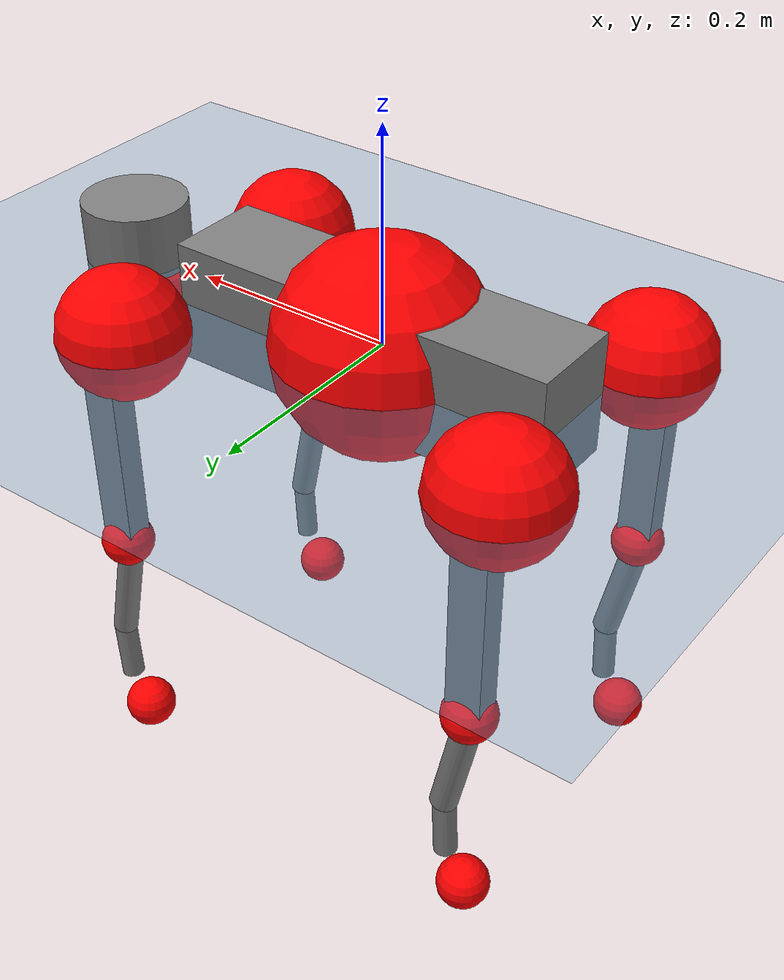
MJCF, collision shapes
<mujoco model="go2">
  <compiler angle="radian" assetdir="assets" balanceinertia="true" inertiafromgeom="false"/>

  <option timestep="0.005" density="1.2" viscosity="2e-05"/>

  <size nkey="1"/>

  <visual>
    <quality shadowsize="8192"/>
    <map shadowclip="0.5"/>
  </visual>

  <default>
    <default class="/">
      <geom contype="0" conaffinity="0" group="1" solref="-1000 -80"/>
      <site size="0.01 0.005 0.005" group="5"/>
      <general forcelimited="true" biastype="affine" gainprm="20" biasprm="0 -20 -0.5"/>
      <default class="go2">
        <joint armature="0.01" damping="0.01" frictionloss="0.2"/>
        <geom condim="1" margin="0.001"/>
        <default class="visual">
          <geom type="mesh" group="2"/>
        </default>
        <default class="collision">
          <geom group="3"/>
          <default class="foot">
            <geom size="0.022 0 0" condim="6" priority="1" friction="0.8 0.02 0.01" solimp="0.015 1 0.022"/>
          </default>
        </default>
        <default class="reward_collision_sphere">
          <geom group="5" rgba="1 0 0 1"/>
        </default>
      </default>
    </default>
  </default>

  <asset>
    <texture type="skybox" colorspace="auto" name="//unnamed_texture_0" builtin="gradient" rgb1="0.95 0.95 0.95" rgb2="0.95 0.95 0.95" width="100" height="600"/>
    <texture type="2d" colorspace="auto" name="texplane" builtin="checker" rgb1="0.345 0.575 0.748" rgb2="0.345 0.575 0.748" markrgb="1 1 1" width="512" height="512"/>
    <material name="MatPlane" class="/" texture="texplane" texuniform="true" texrepeat="2 2" specular="0.9"/>
    <material name="metal" class="/" rgba="0.9 0.95 0.95 1"/>
    <material name="black" class="/" rgba="0 0 0 1"/>
    <material name="white" class="/"/>
    <material name="gray" class="/" rgba="0.671705 0.692426 0.77427 1"/>
    <mesh name="base_0" class="/" file="base_0.obj"/>
    <mesh name="base_1" class="/" file="base_1.obj"/>
    <mesh name="base_2" class="/" file="base_2.obj"/>
    <mesh name="base_3" class="/" file="base_3.obj"/>
    <mesh name="base_4" class="/" file="base_4.obj"/>
    <mesh name="hip_0" class="/" file="hip_0.obj"/>
    <mesh name="hip_1" class="/" file="hip_1.obj"/>
    <mesh name="thigh_0" class="/" file="thigh_0.obj"/>
    <mesh name="thigh_1" class="/" file="thigh_1.obj"/>
    <mesh name="thigh_mirror_0" class="/" file="thigh_mirror_0.obj"/>
    <mesh name="thigh_mirror_1" class="/" file="thigh_mirror_1.obj"/>
    <mesh name="calf_0" class="/" file="calf_0.obj"/>
    <mesh name="calf_1" class="/" file="calf_1.obj"/>
    <mesh name="calf_mirror_0" class="/" file="calf_mirror_0.obj"/>
    <mesh name="calf_mirror_1" class="/" file="calf_mirror_1.obj"/>
    <mesh name="foot" class="/" file="foot.obj"/>
  </asset>

  <worldbody>
    <geom name="floor" class="/" size="100 100 0.125" type="plane" group="0" material="MatPlane"/>
    <light name="toplight_shadow" class="/" pos="0 0 5" dir="0.0990148 0.0990148 -0.990148" type="directional" ambient="0.04 0.04 0.04" diffuse="0.55 0.55 0.55" specular="0.12 0.12 0.12"/>
    <light name="toplight_fill" class="/" pos="0 0 5" dir="0.0990148 0.0990148 -0.990148" type="directional" castshadow="false" ambient="0.04 0.04 0.04" diffuse="0.3 0.3 0.3" specular="0.08 0.08 0.08"/>
    <body name="trunk" childclass="go2">
      <inertial pos="0.021112 0 -0.005366" quat="-0.000543471 0.713435 -0.00173769 0.700719" mass="6.921" diaginertia="0.107027 0.0980771 0.0244531"/>
      <joint name="//unnamed_joint_0" type="free" armature="0" damping="0" frictionloss="0"/>
      <geom name="//unnamed_geom_1" class="visual" material="black" mesh="base_0"/>
      <geom name="//unnamed_geom_2" class="visual" material="black" mesh="base_1"/>
      <geom name="//unnamed_geom_3" class="visual" material="black" mesh="base_2"/>
      <geom name="//unnamed_geom_4" class="visual" material="white" mesh="base_3"/>
      <geom name="//unnamed_geom_5" class="visual" material="gray" mesh="base_4"/>
      <geom name="trunk_1" class="collision" size="0.1881 0.04675 0.057" type="box"/>
      <geom name="trunk_2" class="collision" size="0.05 0.045" pos="0.285 0 0.01" type="cylinder"/>
      <geom name="trunk_3" class="collision" size="0.047" pos="0.293 0 -0.06"/>
      <geom name="//unnamed_geom_9" class="reward_collision_sphere" size="0.1"/>
      <geom name="//unnamed_geom_10" class="reward_collision_sphere" size="0.06" pos="0.28 0 -0.045"/>
      <site name="imu" pos="-0.02557 0 0.04232"/>
      <camera name="track" pos="0 -2 0" quat="0.707107 0.707107 0 0" mode="trackcom"/>
      <camera name="ego_camera" pos="0.312 0 0.045" quat="-0.5 -0.5 0.5 0.5"/>
      <body name="FL_hip" pos="0.1934 0.0465 0">
        <inertial pos="-0.0054 0.00194 -0.000105" quat="0.497014 0.499245 0.505462 0.498237" mass="0.678" diaginertia="0.00088403 0.000596003 0.000479967"/>
        <joint name="FL_hip_joint" pos="0 0 0" axis="1 0 0" range="-1.0472 1.0472"/>
        <geom name="//unnamed_geom_11" class="visual" material="metal" mesh="hip_0"/>
        <geom name="//unnamed_geom_12" class="visual" material="gray" mesh="hip_1"/>
        <geom name="//unnamed_geom_13" class="collision" size="0.046 0.02" pos="0 0.08 0" quat="0.707107 0.707107 0 0" type="cylinder"/>
        <geom name="//unnamed_geom_14" class="reward_collision_sphere" size="0.06" pos="0 0.07 0"/>
        <body name="FL_thigh" pos="0 0.0955 0">
          <inertial pos="-0.00374 -0.0223 -0.0327" quat="0.829533 0.0847635 -0.0200632 0.551623" mass="1.152" diaginertia="0.00594973 0.00584149 0.000878787"/>
          <joint name="FL_thigh_joint" pos="0 0 0" axis="0 1 0" range="-1.5708 3.4907"/>
          <geom name="//unnamed_geom_15" class="visual" material="metal" mesh="thigh_0"/>
          <geom name="//unnamed_geom_16" class="visual" material="gray" mesh="thigh_1"/>
          <geom name="//unnamed_geom_17" class="collision" size="0.1065 0.01225 0.017" pos="0 0 -0.1065" quat="0.707107 0 0.707107 0" type="box"/>
          <body name="FL_calf" pos="0 0 -0.213">
            <inertial pos="0.00629595 -0.000622121 -0.141417" quat="0.710672 0.00154099 -0.00450087 0.703508" mass="0.241352" diaginertia="0.0014901 0.00146356 5.31397e-05"/>
            <joint name="FL_calf_joint" pos="0 0 0" axis="0 1 0" range="-2.7227 -0.83776"/>
            <geom name="//unnamed_geom_18" class="visual" material="gray" mesh="calf_0"/>
            <geom name="//unnamed_geom_19" class="visual" material="black" mesh="calf_1"/>
            <geom name="FL_calf0" class="collision" size="0.012 0.06" pos="0.008 0 -0.06" quat="0.994493 0 -0.104807 0" type="cylinder"/>
            <geom name="//unnamed_geom_21" class="collision" size="0.011 0.0325" pos="0.02 0 -0.148" quat="0.999688 0 0.0249974 0" type="cylinder"/>
            <geom name="//unnamed_geom_22" class="visual" pos="0 0 -0.213" quat="1 0 0 0" material="black" mesh="foot"/>
            <geom name="FL_foot" class="foot" pos="-0.002 0 -0.213"/>
            <geom name="//unnamed_geom_24" class="reward_collision_sphere" size="0.025"/>
            <geom name="//unnamed_geom_25" class="reward_collision_sphere" size="0.025" pos="-0.002 0 -0.213"/>
            <site name="FL_foot" class="foot" pos="-0.002 0 -0.213"/>
          </body>
        </body>
      </body>
      <body name="FR_hip" pos="0.1934 -0.0465 0">
        <inertial pos="-0.0054 -0.00194 -0.000105" quat="0.498237 0.505462 0.499245 0.497014" mass="0.678" diaginertia="0.00088403 0.000596003 0.000479967"/>
        <joint name="FR_hip_joint" pos="0 0 0" axis="1 0 0" range="-1.0472 1.0472"/>
        <geom name="//unnamed_geom_26" class="visual" quat="4.63268e-05 1 0 0" material="metal" mesh="hip_0"/>
        <geom name="//unnamed_geom_27" class="visual" quat="4.63268e-05 1 0 0" material="gray" mesh="hip_1"/>
        <geom name="//unnamed_geom_28" class="collision" size="0.046 0.02" pos="0 -0.08 0" quat="0.707107 0.707107 0 0" type="cylinder"/>
        <geom name="//unnamed_geom_29" class="reward_collision_sphere" size="0.06" pos="0 -0.07 0"/>
        <body name="FR_thigh" pos="0 -0.0955 0">
          <inertial pos="-0.00374 0.0223 -0.0327" quat="0.551623 -0.0200632 0.0847635 0.829533" mass="1.152" diaginertia="0.00594973 0.00584149 0.000878787"/>
          <joint name="FR_thigh_joint" pos="0 0 0" axis="0 -1 0" range="-3.4907 1.5708"/>
          <geom name="//unnamed_geom_30" class="visual" material="metal" mesh="thigh_mirror_0"/>
          <geom name="//unnamed_geom_31" class="visual" material="gray" mesh="thigh_mirror_1"/>
          <geom name="//unnamed_geom_32" class="collision" size="0.1065 0.01225 0.017" pos="0 0 -0.1065" quat="0.707107 0 0.707107 0" type="box"/>
          <body name="FR_calf" pos="0 0 -0.213">
            <inertial pos="0.00629595 0.000622121 -0.141417" quat="0.703508 -0.00450087 0.00154099 0.710672" mass="0.241352" diaginertia="0.0014901 0.00146356 5.31397e-05"/>
            <joint name="FR_calf_joint" pos="0 0 0" axis="0 -1 0" range="0.83776 2.7227"/>
            <geom name="//unnamed_geom_33" class="visual" material="gray" mesh="calf_mirror_0"/>
            <geom name="//unnamed_geom_34" class="visual" material="black" mesh="calf_mirror_1"/>
            <geom name="FR_calf0" class="collision" size="0.013 0.06" pos="0.01 0 -0.06" quat="0.995004 0 -0.0998334 0" type="cylinder"/>
            <geom name="//unnamed_geom_36" class="collision" size="0.011 0.0325" pos="0.02 0 -0.148" quat="0.999688 0 0.0249974 0" type="cylinder"/>
            <geom name="//unnamed_geom_37" class="visual" pos="0 0 -0.213" quat="1 0 0 0" material="black" mesh="foot"/>
            <geom name="FR_foot" class="foot" pos="-0.002 0 -0.213"/>
            <geom name="//unnamed_geom_39" class="reward_collision_sphere" size="0.025"/>
            <geom name="//unnamed_geom_40" class="reward_collision_sphere" size="0.025" pos="-0.002 0 -0.213"/>
            <site name="FR_foot" class="foot" pos="-0.002 0 -0.213"/>
          </body>
        </body>
      </body>
      <body name="RL_hip" pos="-0.1934 0.0465 0">
        <inertial pos="0.0054 0.00194 -0.000105" quat="0.505462 0.498237 0.497014 0.499245" mass="0.678" diaginertia="0.00088403 0.000596003 0.000479967"/>
        <joint name="RL_hip_joint" pos="0 0 0" axis="-1 0 0" range="-1.0472 1.0472"/>
        <geom name="//unnamed_geom_41" class="visual" quat="4.63268e-05 0 1 0" material="metal" mesh="hip_0"/>
        <geom name="//unnamed_geom_42" class="visual" quat="4.63268e-05 0 1 0" material="gray" mesh="hip_1"/>
        <geom name="//unnamed_geom_43" class="collision" size="0.046 0.02" pos="0 0.08 0" quat="0.707107 0.707107 0 0" type="cylinder"/>
        <geom name="//unnamed_geom_44" class="reward_collision_sphere" size="0.06" pos="0 0.07 0"/>
        <body name="RL_thigh" pos="0 0.0955 0">
          <inertial pos="-0.00374 -0.0223 -0.0327" quat="0.829533 0.0847635 -0.0200632 0.551623" mass="1.152" diaginertia="0.00594973 0.00584149 0.000878787"/>
          <joint name="RL_thigh_joint" pos="0 0 0" axis="0 1 0" range="-0.5236 4.5379"/>
          <geom name="//unnamed_geom_45" class="visual" material="metal" mesh="thigh_0"/>
          <geom name="//unnamed_geom_46" class="visual" material="gray" mesh="thigh_1"/>
          <geom name="//unnamed_geom_47" class="collision" size="0.1065 0.01225 0.017" pos="0 0 -0.1065" quat="0.707107 0 0.707107 0" type="box"/>
          <body name="RL_calf" pos="0 0 -0.213">
            <inertial pos="0.00629595 -0.000622121 -0.141417" quat="0.710672 0.00154099 -0.00450087 0.703508" mass="0.241352" diaginertia="0.0014901 0.00146356 5.31397e-05"/>
            <joint name="RL_calf_joint" pos="0 0 0" axis="0 1 0" range="-2.7227 -0.83776"/>
            <geom name="//unnamed_geom_48" class="visual" material="gray" mesh="calf_0"/>
            <geom name="//unnamed_geom_49" class="visual" material="black" mesh="calf_1"/>
            <geom name="RL_calf0" class="collision" size="0.013 0.06" pos="0.01 0 -0.06" quat="0.995004 0 -0.0998334 0" type="cylinder"/>
            <geom name="//unnamed_geom_51" class="collision" size="0.011 0.0325" pos="0.02 0 -0.148" quat="0.999688 0 0.0249974 0" type="cylinder"/>
            <geom name="//unnamed_geom_52" class="visual" pos="0 0 -0.213" quat="1 0 0 0" material="black" mesh="foot"/>
            <geom name="RL_foot" class="foot" pos="-0.002 0 -0.213"/>
            <geom name="//unnamed_geom_54" class="reward_collision_sphere" size="0.025"/>
            <geom name="//unnamed_geom_55" class="reward_collision_sphere" size="0.025" pos="-0.002 0 -0.213"/>
            <site name="RL_foot" class="foot" pos="-0.002 0 -0.213"/>
          </body>
        </body>
      </body>
      <body name="RR_hip" pos="-0.1934 -0.0465 0">
        <inertial pos="0.0054 -0.00194 -0.000105" quat="0.499245 0.497014 0.498237 0.505462" mass="0.678" diaginertia="0.00088403 0.000596003 0.000479967"/>
        <joint name="RR_hip_joint" pos="0 0 0" axis="-1 0 0" range="-1.0472 1.0472"/>
        <geom name="//unnamed_geom_56" class="visual" quat="2.14617e-09 4.63268e-05 4.63268e-05 -1" material="metal" mesh="hip_0"/>
        <geom name="//unnamed_geom_57" class="visual" quat="2.14617e-09 4.63268e-05 4.63268e-05 -1" material="gray" mesh="hip_1"/>
        <geom name="//unnamed_geom_58" class="collision" size="0.046 0.02" pos="0 -0.08 0" quat="0.707107 0.707107 0 0" type="cylinder"/>
        <geom name="//unnamed_geom_59" class="reward_collision_sphere" size="0.06" pos="0 -0.07 0"/>
        <body name="RR_thigh" pos="0 -0.0955 0">
          <inertial pos="-0.00374 0.0223 -0.0327" quat="0.551623 -0.0200632 0.0847635 0.829533" mass="1.152" diaginertia="0.00594973 0.00584149 0.000878787"/>
          <joint name="RR_thigh_joint" pos="0 0 0" axis="0 -1 0" range="-4.5379 0.5236"/>
          <geom name="//unnamed_geom_60" class="visual" material="metal" mesh="thigh_mirror_0"/>
          <geom name="//unnamed_geom_61" class="visual" material="gray" mesh="thigh_mirror_1"/>
          <geom name="//unnamed_geom_62" class="collision" size="0.1065 0.01225 0.017" pos="0 0 -0.1065" quat="0.707107 0 0.707107 0" type="box"/>
          <body name="RR_calf" pos="0 0 -0.213">
            <inertial pos="0.00629595 0.000622121 -0.141417" quat="0.703508 -0.00450087 0.00154099 0.710672" mass="0.241352" diaginertia="0.0014901 0.00146356 5.31397e-05"/>
            <joint name="RR_calf_joint" pos="0 0 0" axis="0 -1 0" range="0.83776 2.7227"/>
            <geom name="//unnamed_geom_63" class="visual" material="gray" mesh="calf_mirror_0"/>
            <geom name="//unnamed_geom_64" class="visual" material="black" mesh="calf_mirror_1"/>
            <geom name="RR_calf0" class="collision" size="0.013 0.06" pos="0.01 0 -0.06" quat="0.995004 0 -0.0998334 0" type="cylinder"/>
            <geom name="//unnamed_geom_66" class="collision" size="0.011 0.0325" pos="0.02 0 -0.148" quat="0.999688 0 0.0249974 0" type="cylinder"/>
            <geom name="//unnamed_geom_67" class="visual" pos="0 0 -0.213" quat="1 0 0 0" material="black" mesh="foot"/>
            <geom name="RR_foot" class="foot" pos="-0.002 0 -0.213"/>
            <geom name="//unnamed_geom_69" class="reward_collision_sphere" size="0.025"/>
            <geom name="//unnamed_geom_70" class="reward_collision_sphere" size="0.025" pos="-0.002 0 -0.213"/>
            <site name="RR_foot" class="foot" pos="-0.002 0 -0.213"/>
          </body>
        </body>
      </body>
    </body>
  </worldbody>

  <contact>
    <pair class="/" geom1="floor" geom2="FL_foot" name="//unnamed_contact_0"/>
    <pair class="/" geom1="floor" geom2="FR_foot" name="//unnamed_contact_1"/>
    <pair class="/" geom1="floor" geom2="RL_foot" name="//unnamed_contact_2"/>
    <pair class="/" geom1="floor" geom2="RR_foot" name="//unnamed_contact_3"/>
  </contact>

  <actuator>
    <general name="FL_hip" class="/" joint="FL_hip_joint" forcerange="-23.7 23.7"/>
    <general name="FL_thigh" class="/" joint="FL_thigh_joint" forcerange="-23.7 23.7"/>
    <general name="FL_calf" class="/" joint="FL_calf_joint" forcerange="-45.43 45.43"/>
    <general name="FR_hip" class="/" joint="FR_hip_joint" forcerange="-23.7 23.7"/>
    <general name="FR_thigh" class="/" joint="FR_thigh_joint" forcerange="-23.7 23.7"/>
    <general name="FR_calf" class="/" joint="FR_calf_joint" forcerange="-45.43 45.43"/>
    <general name="RL_hip" class="/" joint="RL_hip_joint" forcerange="-23.7 23.7"/>
    <general name="RL_thigh" class="/" joint="RL_thigh_joint" forcerange="-23.7 23.7"/>
    <general name="RL_calf" class="/" joint="RL_calf_joint" forcerange="-45.43 45.43"/>
    <general name="RR_hip" class="/" joint="RR_hip_joint" forcerange="-23.7 23.7"/>
    <general name="RR_thigh" class="/" joint="RR_thigh_joint" forcerange="-23.7 23.7"/>
    <general name="RR_calf" class="/" joint="RR_calf_joint" forcerange="-45.43 45.43"/>
  </actuator>

  <sensor>
    <gyro site="imu" name="imu_angular_velocity"/>
    <velocimeter site="imu" name="imu_linear_velocity"/>
    <framelinvel objtype="site" objname="FL_foot" name="FL_foot_global_linear_velocity"/>
    <framelinvel objtype="site" objname="FR_foot" name="FR_foot_global_linear_velocity"/>
    <framelinvel objtype="site" objname="RL_foot" name="RL_foot_global_linear_velocity"/>
    <framelinvel objtype="site" objname="RR_foot" name="RR_foot_global_linear_velocity"/>
  </sensor>

  <keyframe>
    <key name="home" qpos="0 0 0.325 1 0 0 0 0.1 0.8 -1.5 -0.1 -0.8 1.5 -0.1 0.8 -1.5 0.1 -0.8 1.5"/>
  </keyframe>
</mujoco>
